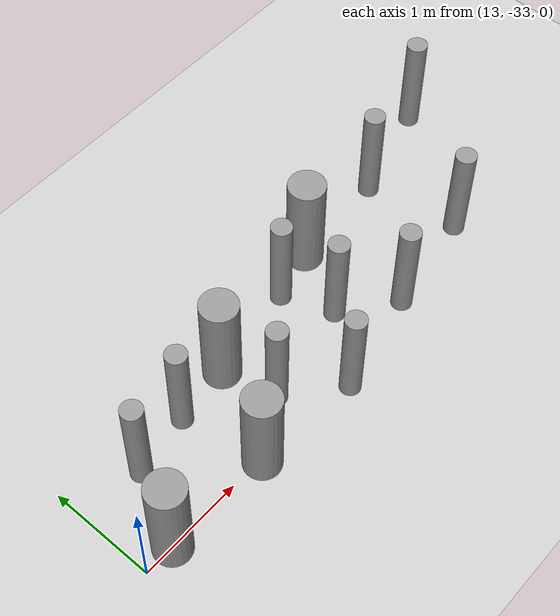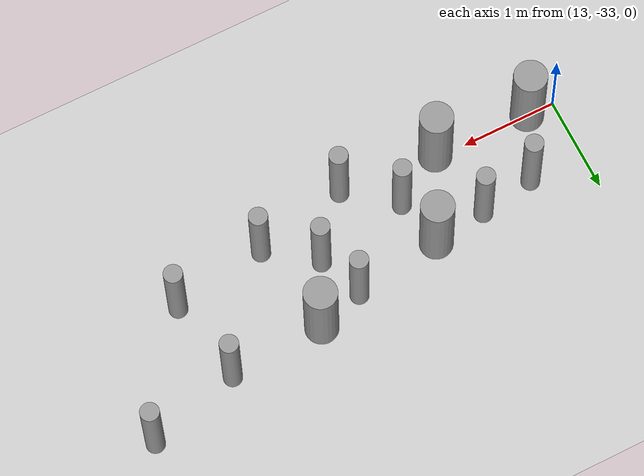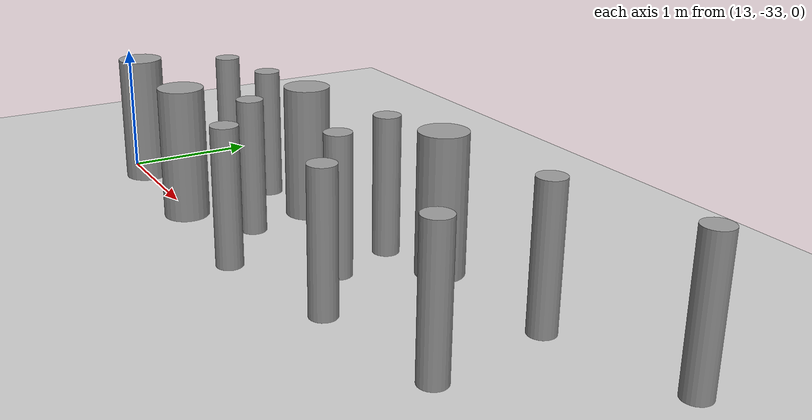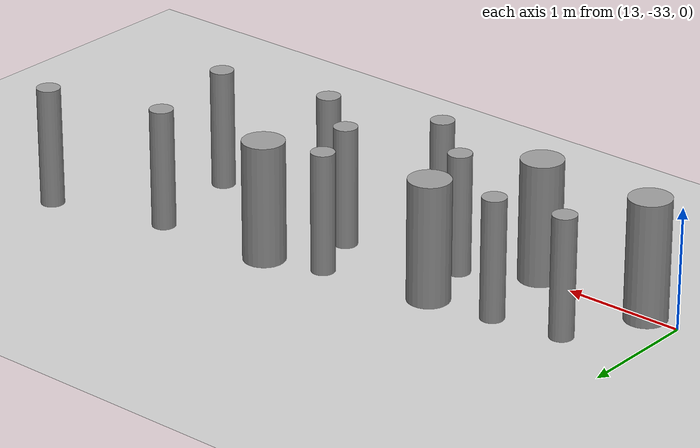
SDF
<sdf version="1.6">
 <world name="default">
  <model name="ground_plane">
   <static>1</static>
   <link name="link">
    <collision name="collision">
     <geometry><plane><normal>0 0 1</normal><size>100 100</size></plane></geometry>
     <surface><friction><ode><mu>100</mu><mu2>50</mu2></ode></friction></surface>
    </collision>
    <visual name="visual">
     <cast_shadows>0</cast_shadows>
     <geometry><plane><normal>0 0 1</normal><size>100 100</size></plane></geometry>
     <material>
      <script><uri>file://media/materials/scripts/gazebo.material</uri><name>Gazebo/Grey</name></script>
     </material>
    </visual>
   </link>
  </model>
  <model name="cyl_wall_clone_clone_1_clone_1_clone_clone_1_clone_0_clone_0">
   <link name="link_0">
    <pose>-2.73893 -0.366465 0 0 -0 0</pose>
    <inertial>
     <mass>0.0374993</mass>
     <inertia>
      <ixx>0.00321281</ixx>
      <ixy>0</ixy>
      <ixz>0</ixz>
      <iyy>0.00321281</iyy>
      <iyz>0</iyz>
      <izz>0.000175774</izz>
     </inertia>
    </inertial>
    <visual name="visual">
     <geometry><cylinder><radius>0.0968661</radius><length>1</length></cylinder></geometry>
     <material>
      <lighting>1</lighting>
      <script><uri>file://media/materials/scripts/gazebo.material</uri><name>Gazebo/Grey</name></script>
      <ambient>0.3 0.3 0.3 1</ambient>
      <diffuse>0.7 0.7 0.7 1</diffuse>
      <specular>0.01 0.01 0.01 1</specular>
      <emissive>0 0 0 1</emissive>
     </material>
    </visual>
    <collision name="collision">
     <geometry><cylinder><radius>0.096866</radius><length>1</length></cylinder></geometry>
     <surface>
      <friction>
       <ode><mu>1</mu><mu2>1</mu2><fdir1>0 0 0</fdir1><slip1>0</slip1><slip2>0</slip2></ode>
       <torsional>
        <coefficient>1</coefficient>
        <patch_radius>0</patch_radius>
        <surface_radius>0</surface_radius>
        <use_patch_radius>1</use_patch_radius>
        <ode><slip>0</slip></ode>
       </torsional>
      </friction>
      <bounce><restitution_coefficient>0</restitution_coefficient><threshold>1e+06</threshold></bounce>
      <contact>
       <collide_without_contact>0</collide_without_contact>
       <collide_without_contact_bitmask>1</collide_without_contact_bitmask>
       <collide_bitmask>1</collide_bitmask>
       <ode>
        <soft_cfm>0</soft_cfm>
        <soft_erp>0.2</soft_erp>
        <kp>1e+13</kp>
        <kd>1</kd>
        <max_vel>0.01</max_vel>
        <min_depth>0</min_depth>
       </ode>
       <bullet>
        <split_impulse>1</split_impulse>
        <split_impulse_penetration_threshold>-0.01</split_impulse_penetration_threshold>
        <soft_cfm>0</soft_cfm>
        <soft_erp>0.2</soft_erp>
        <kp>1e+13</kp>
        <kd>1</kd>
       </bullet>
      </contact>
     </surface>
    </collision>
   </link>
   <link name="link_0_clone">
    <pose>-1.73893 0.61877 0 0 -0 0</pose>
    <inertial>
     <mass>0.0374993</mass>
     <inertia>
      <ixx>0.00321281</ixx>
      <ixy>0</ixy>
      <ixz>0</ixz>
      <iyy>0.00321281</iyy>
      <iyz>0</iyz>
      <izz>0.000175774</izz>
     </inertia>
    </inertial>
    <visual name="visual">
     <geometry><cylinder><radius>0.0968661</radius><length>1</length></cylinder></geometry>
     <material>
      <lighting>1</lighting>
      <script><uri>file://media/materials/scripts/gazebo.material</uri><name>Gazebo/Grey</name></script>
      <ambient>0.3 0.3 0.3 1</ambient>
      <diffuse>0.7 0.7 0.7 1</diffuse>
      <specular>0.01 0.01 0.01 1</specular>
      <emissive>0 0 0 1</emissive>
      <shader type="pixel"/>
     </material>
    </visual>
    <collision name="collision">
     <geometry><cylinder><radius>0.096866</radius><length>1</length></cylinder></geometry>
     <surface>
      <friction>
       <ode><mu>1</mu><mu2>1</mu2><fdir1>0 0 0</fdir1><slip1>0</slip1><slip2>0</slip2></ode>
       <torsional>
        <coefficient>1</coefficient>
        <patch_radius>0</patch_radius>
        <surface_radius>0</surface_radius>
        <use_patch_radius>1</use_patch_radius>
        <ode><slip>0</slip></ode>
       </torsional>
      </friction>
      <bounce><restitution_coefficient>0</restitution_coefficient><threshold>1e+06</threshold></bounce>
      <contact>
       <collide_without_contact>0</collide_without_contact>
       <collide_without_contact_bitmask>1</collide_without_contact_bitmask>
       <collide_bitmask>1</collide_bitmask>
       <ode>
        <soft_cfm>0</soft_cfm>
        <soft_erp>0.2</soft_erp>
        <kp>1e+13</kp>
        <kd>1</kd>
        <max_vel>0.01</max_vel>
        <min_depth>0</min_depth>
       </ode>
       <bullet>
        <split_impulse>1</split_impulse>
        <split_impulse_penetration_threshold>-0.01</split_impulse_penetration_threshold>
        <soft_cfm>0</soft_cfm>
        <soft_erp>0.2</soft_erp>
        <kp>1e+13</kp>
        <kd>1</kd>
       </bullet>
      </contact>
     </surface>
    </collision>
   </link>
   <link name="link_0_clone_clone">
    <pose>-0.327073 0.143919 0 0 -0 0</pose>
    <inertial>
     <mass>0.0374993</mass>
     <inertia>
      <ixx>0.00321281</ixx>
      <ixy>0</ixy>
      <ixz>0</ixz>
      <iyy>0.00321281</iyy>
      <iyz>0</iyz>
      <izz>0.000175774</izz>
     </inertia>
    </inertial>
    <visual name="visual">
     <geometry><cylinder><radius>0.0968661</radius><length>1</length></cylinder></geometry>
     <material>
      <lighting>1</lighting>
      <script><uri>file://media/materials/scripts/gazebo.material</uri><name>Gazebo/Grey</name></script>
      <ambient>0.3 0.3 0.3 1</ambient>
      <diffuse>0.7 0.7 0.7 1</diffuse>
      <specular>0.01 0.01 0.01 1</specular>
      <emissive>0 0 0 1</emissive>
      <shader type="pixel"/>
     </material>
    </visual>
    <collision name="collision">
     <geometry><cylinder><radius>0.096866</radius><length>1</length></cylinder></geometry>
     <surface>
      <friction>
       <ode><mu>1</mu><mu2>1</mu2><fdir1>0 0 0</fdir1><slip1>0</slip1><slip2>0</slip2></ode>
       <torsional>
        <coefficient>1</coefficient>
        <patch_radius>0</patch_radius>
        <surface_radius>0</surface_radius>
        <use_patch_radius>1</use_patch_radius>
        <ode><slip>0</slip></ode>
       </torsional>
      </friction>
      <bounce><restitution_coefficient>0</restitution_coefficient><threshold>1e+06</threshold></bounce>
      <contact>
       <collide_without_contact>0</collide_without_contact>
       <collide_without_contact_bitmask>1</collide_without_contact_bitmask>
       <collide_bitmask>1</collide_bitmask>
       <ode>
        <soft_cfm>0</soft_cfm>
        <soft_erp>0.2</soft_erp>
        <kp>1e+13</kp>
        <kd>1</kd>
        <max_vel>0.01</max_vel>
        <min_depth>0</min_depth>
       </ode>
       <bullet>
        <split_impulse>1</split_impulse>
        <split_impulse_penetration_threshold>-0.01</split_impulse_penetration_threshold>
        <soft_cfm>0</soft_cfm>
        <soft_erp>0.2</soft_erp>
        <kp>1e+13</kp>
        <kd>1</kd>
       </bullet>
      </contact>
     </surface>
    </collision>
   </link>
   <link name="link_0_clone_clone_0">
    <pose>1.26107 -0.419359 0 0 -0 0</pose>
    <inertial>
     <mass>0.0374993</mass>
     <inertia>
      <ixx>0.00321281</ixx>
      <ixy>0</ixy>
      <ixz>0</ixz>
      <iyy>0.00321281</iyy>
      <iyz>0</iyz>
      <izz>0.000175774</izz>
     </inertia>
    </inertial>
    <visual name="visual">
     <geometry><cylinder><radius>0.0968661</radius><length>1</length></cylinder></geometry>
     <material>
      <lighting>1</lighting>
      <script><uri>file://media/materials/scripts/gazebo.material</uri><name>Gazebo/Grey</name></script>
      <ambient>0.3 0.3 0.3 1</ambient>
      <diffuse>0.7 0.7 0.7 1</diffuse>
      <specular>0.01 0.01 0.01 1</specular>
      <emissive>0 0 0 1</emissive>
      <shader type="pixel"/>
     </material>
    </visual>
    <collision name="collision">
     <geometry><cylinder><radius>0.096866</radius><length>1</length></cylinder></geometry>
     <surface>
      <friction>
       <ode><mu>1</mu><mu2>1</mu2><fdir1>0 0 0</fdir1><slip1>0</slip1><slip2>0</slip2></ode>
       <torsional>
        <coefficient>1</coefficient>
        <patch_radius>0</patch_radius>
        <surface_radius>0</surface_radius>
        <use_patch_radius>1</use_patch_radius>
        <ode><slip>0</slip></ode>
       </torsional>
      </friction>
      <bounce><restitution_coefficient>0</restitution_coefficient><threshold>1e+06</threshold></bounce>
      <contact>
       <collide_without_contact>0</collide_without_contact>
       <collide_without_contact_bitmask>1</collide_without_contact_bitmask>
       <collide_bitmask>1</collide_bitmask>
       <ode>
        <soft_cfm>0</soft_cfm>
        <soft_erp>0.2</soft_erp>
        <kp>1e+13</kp>
        <kd>1</kd>
        <max_vel>0.01</max_vel>
        <min_depth>0</min_depth>
       </ode>
       <bullet>
        <split_impulse>1</split_impulse>
        <split_impulse_penetration_threshold>-0.01</split_impulse_penetration_threshold>
        <soft_cfm>0</soft_cfm>
        <soft_erp>0.2</soft_erp>
        <kp>1e+13</kp>
        <kd>1</kd>
       </bullet>
      </contact>
     </surface>
    </collision>
   </link>
   <link name="link_0_clone_clone_1">
    <pose>-1.73893 -0.277168 0 0 -0 0</pose>
    <inertial>
     <mass>0.0374993</mass>
     <inertia>
      <ixx>0.00321281</ixx>
      <ixy>0</ixy>
      <ixz>0</ixz>
      <iyy>0.00321281</iyy>
      <iyz>0</iyz>
      <izz>0.000175774</izz>
     </inertia>
    </inertial>
    <visual name="visual">
     <geometry><cylinder><radius>0.0968661</radius><length>1</length></cylinder></geometry>
     <material>
      <lighting>1</lighting>
      <script><uri>file://media/materials/scripts/gazebo.material</uri><name>Gazebo/Grey</name></script>
      <ambient>0.3 0.3 0.3 1</ambient>
      <diffuse>0.7 0.7 0.7 1</diffuse>
      <specular>0.01 0.01 0.01 1</specular>
      <emissive>0 0 0 1</emissive>
      <shader type="pixel"/>
     </material>
    </visual>
    <collision name="collision">
     <geometry><cylinder><radius>0.096866</radius><length>1</length></cylinder></geometry>
     <surface>
      <friction>
       <ode><mu>1</mu><mu2>1</mu2><fdir1>0 0 0</fdir1><slip1>0</slip1><slip2>0</slip2></ode>
       <torsional>
        <coefficient>1</coefficient>
        <patch_radius>0</patch_radius>
        <surface_radius>0</surface_radius>
        <use_patch_radius>1</use_patch_radius>
        <ode><slip>0</slip></ode>
       </torsional>
      </friction>
      <bounce><restitution_coefficient>0</restitution_coefficient><threshold>1e+06</threshold></bounce>
      <contact>
       <collide_without_contact>0</collide_without_contact>
       <collide_without_contact_bitmask>1</collide_without_contact_bitmask>
       <collide_bitmask>1</collide_bitmask>
       <ode>
        <soft_cfm>0</soft_cfm>
        <soft_erp>0.2</soft_erp>
        <kp>1e+13</kp>
        <kd>1</kd>
        <max_vel>0.01</max_vel>
        <min_depth>0</min_depth>
       </ode>
       <bullet>
        <split_impulse>1</split_impulse>
        <split_impulse_penetration_threshold>-0.01</split_impulse_penetration_threshold>
        <soft_cfm>0</soft_cfm>
        <soft_erp>0.2</soft_erp>
        <kp>1e+13</kp>
        <kd>1</kd>
       </bullet>
      </contact>
     </surface>
    </collision>
   </link>
   <link name="link_0_clone_clone_2">
    <pose>-0.738934 0.593961 0 0 -0 0</pose>
    <inertial>
     <mass>0.0374993</mass>
     <inertia>
      <ixx>0.00321281</ixx>
      <ixy>0</ixy>
      <ixz>0</ixz>
      <iyy>0.00321281</iyy>
      <iyz>0</iyz>
      <izz>0.000175774</izz>
     </inertia>
    </inertial>
    <visual name="visual">
     <geometry><cylinder><radius>0.0968661</radius><length>1</length></cylinder></geometry>
     <material>
      <lighting>1</lighting>
      <script><uri>file://media/materials/scripts/gazebo.material</uri><name>Gazebo/Grey</name></script>
      <ambient>0.3 0.3 0.3 1</ambient>
      <diffuse>0.7 0.7 0.7 1</diffuse>
      <specular>0.01 0.01 0.01 1</specular>
      <emissive>0 0 0 1</emissive>
      <shader type="pixel"/>
     </material>
    </visual>
    <collision name="collision">
     <geometry><cylinder><radius>0.096866</radius><length>1</length></cylinder></geometry>
     <surface>
      <friction>
       <ode><mu>1</mu><mu2>1</mu2><fdir1>0 0 0</fdir1><slip1>0</slip1><slip2>0</slip2></ode>
       <torsional>
        <coefficient>1</coefficient>
        <patch_radius>0</patch_radius>
        <surface_radius>0</surface_radius>
        <use_patch_radius>1</use_patch_radius>
        <ode><slip>0</slip></ode>
       </torsional>
      </friction>
      <bounce><restitution_coefficient>0</restitution_coefficient><threshold>1e+06</threshold></bounce>
      <contact>
       <collide_without_contact>0</collide_without_contact>
       <collide_without_contact_bitmask>1</collide_without_contact_bitmask>
       <collide_bitmask>1</collide_bitmask>
       <ode>
        <soft_cfm>0</soft_cfm>
        <soft_erp>0.2</soft_erp>
        <kp>1e+13</kp>
        <kd>1</kd>
        <max_vel>0.01</max_vel>
        <min_depth>0</min_depth>
       </ode>
       <bullet>
        <split_impulse>1</split_impulse>
        <split_impulse_penetration_threshold>-0.01</split_impulse_penetration_threshold>
        <soft_cfm>0</soft_cfm>
        <soft_erp>0.2</soft_erp>
        <kp>1e+13</kp>
        <kd>1</kd>
       </bullet>
      </contact>
     </surface>
    </collision>
   </link>
   <link name="link_0_clone_clone_3">
    <pose>0.261066 0.624849 0 0 -0 0</pose>
    <inertial>
     <mass>0.0374993</mass>
     <inertia>
      <ixx>0.00321281</ixx>
      <ixy>0</ixy>
      <ixz>0</ixz>
      <iyy>0.00321281</iyy>
      <iyz>0</iyz>
      <izz>0.000175774</izz>
     </inertia>
    </inertial>
    <visual name="visual">
     <geometry><cylinder><radius>0.0968661</radius><length>1</length></cylinder></geometry>
     <material>
      <lighting>1</lighting>
      <script><uri>file://media/materials/scripts/gazebo.material</uri><name>Gazebo/Grey</name></script>
      <ambient>0.3 0.3 0.3 1</ambient>
      <diffuse>0.7 0.7 0.7 1</diffuse>
      <specular>0.01 0.01 0.01 1</specular>
      <emissive>0 0 0 1</emissive>
      <shader type="pixel"/>
     </material>
    </visual>
    <collision name="collision">
     <geometry><cylinder><radius>0.096866</radius><length>1</length></cylinder></geometry>
     <surface>
      <friction>
       <ode><mu>1</mu><mu2>1</mu2><fdir1>0 0 0</fdir1><slip1>0</slip1><slip2>0</slip2></ode>
       <torsional>
        <coefficient>1</coefficient>
        <patch_radius>0</patch_radius>
        <surface_radius>0</surface_radius>
        <use_patch_radius>1</use_patch_radius>
        <ode><slip>0</slip></ode>
       </torsional>
      </friction>
      <bounce><restitution_coefficient>0</restitution_coefficient><threshold>1e+06</threshold></bounce>
      <contact>
       <collide_without_contact>0</collide_without_contact>
       <collide_without_contact_bitmask>1</collide_without_contact_bitmask>
       <collide_bitmask>1</collide_bitmask>
       <ode>
        <soft_cfm>0</soft_cfm>
        <soft_erp>0.2</soft_erp>
        <kp>1e+13</kp>
        <kd>1</kd>
        <max_vel>0.01</max_vel>
        <min_depth>0</min_depth>
       </ode>
       <bullet>
        <split_impulse>1</split_impulse>
        <split_impulse_penetration_threshold>-0.01</split_impulse_penetration_threshold>
        <soft_cfm>0</soft_cfm>
        <soft_erp>0.2</soft_erp>
        <kp>1e+13</kp>
        <kd>1</kd>
       </bullet>
      </contact>
     </surface>
    </collision>
   </link>
   <link name="link_0_clone_clone_4">
    <pose>-0.239049 -0.353105 0 0 -0 0</pose>
    <inertial>
     <mass>0.0374993</mass>
     <inertia>
      <ixx>0.00321281</ixx>
      <ixy>0</ixy>
      <ixz>0</ixz>
      <iyy>0.00321281</iyy>
      <iyz>0</iyz>
      <izz>0.000175774</izz>
     </inertia>
    </inertial>
    <visual name="visual">
     <geometry><cylinder><radius>0.0968661</radius><length>1</length></cylinder></geometry>
     <material>
      <lighting>1</lighting>
      <script><uri>file://media/materials/scripts/gazebo.material</uri><name>Gazebo/Grey</name></script>
      <ambient>0.3 0.3 0.3 1</ambient>
      <diffuse>0.7 0.7 0.7 1</diffuse>
      <specular>0.01 0.01 0.01 1</specular>
      <emissive>0 0 0 1</emissive>
      <shader type="pixel"/>
     </material>
    </visual>
    <collision name="collision">
     <geometry><cylinder><radius>0.096866</radius><length>1</length></cylinder></geometry>
     <surface>
      <friction>
       <ode><mu>1</mu><mu2>1</mu2><fdir1>0 0 0</fdir1><slip1>0</slip1><slip2>0</slip2></ode>
       <torsional>
        <coefficient>1</coefficient>
        <patch_radius>0</patch_radius>
        <surface_radius>0</surface_radius>
        <use_patch_radius>1</use_patch_radius>
        <ode><slip>0</slip></ode>
       </torsional>
      </friction>
      <bounce><restitution_coefficient>0</restitution_coefficient><threshold>1e+06</threshold></bounce>
      <contact>
       <collide_without_contact>0</collide_without_contact>
       <collide_without_contact_bitmask>1</collide_without_contact_bitmask>
       <collide_bitmask>1</collide_bitmask>
       <ode>
        <soft_cfm>0</soft_cfm>
        <soft_erp>0.2</soft_erp>
        <kp>1e+13</kp>
        <kd>1</kd>
        <max_vel>0.01</max_vel>
        <min_depth>0</min_depth>
       </ode>
       <bullet>
        <split_impulse>1</split_impulse>
        <split_impulse_penetration_threshold>-0.01</split_impulse_penetration_threshold>
        <soft_cfm>0</soft_cfm>
        <soft_erp>0.2</soft_erp>
        <kp>1e+13</kp>
        <kd>1</kd>
       </bullet>
      </contact>
     </surface>
    </collision>
   </link>
   <link name="link_0_clone_clone_5">
    <pose>0.672792 0.143919 0 0 -0 0</pose>
    <inertial>
     <mass>0.0374993</mass>
     <inertia>
      <ixx>0.00321281</ixx>
      <ixy>0</ixy>
      <ixz>0</ixz>
      <iyy>0.00321281</iyy>
      <iyz>0</iyz>
      <izz>0.000175774</izz>
     </inertia>
    </inertial>
    <visual name="visual">
     <geometry><cylinder><radius>0.0968661</radius><length>1</length></cylinder></geometry>
     <material>
      <lighting>1</lighting>
      <script><uri>file://media/materials/scripts/gazebo.material</uri><name>Gazebo/Grey</name></script>
      <ambient>0.3 0.3 0.3 1</ambient>
      <diffuse>0.7 0.7 0.7 1</diffuse>
      <specular>0.01 0.01 0.01 1</specular>
      <emissive>0 0 0 1</emissive>
      <shader type="pixel"/>
     </material>
    </visual>
    <collision name="collision">
     <geometry><cylinder><radius>0.096866</radius><length>1</length></cylinder></geometry>
     <surface>
      <friction>
       <ode><mu>1</mu><mu2>1</mu2><fdir1>0 0 0</fdir1><slip1>0</slip1><slip2>0</slip2></ode>
       <torsional>
        <coefficient>1</coefficient>
        <patch_radius>0</patch_radius>
        <surface_radius>0</surface_radius>
        <use_patch_radius>1</use_patch_radius>
        <ode><slip>0</slip></ode>
       </torsional>
      </friction>
      <bounce><restitution_coefficient>0</restitution_coefficient><threshold>1e+06</threshold></bounce>
      <contact>
       <collide_without_contact>0</collide_without_contact>
       <collide_without_contact_bitmask>1</collide_without_contact_bitmask>
       <collide_bitmask>1</collide_bitmask>
       <ode>
        <soft_cfm>0</soft_cfm>
        <soft_erp>0.2</soft_erp>
        <kp>1e+13</kp>
        <kd>1</kd>
        <max_vel>0.01</max_vel>
        <min_depth>0</min_depth>
       </ode>
       <bullet>
        <split_impulse>1</split_impulse>
        <split_impulse_penetration_threshold>-0.01</split_impulse_penetration_threshold>
        <soft_cfm>0</soft_cfm>
        <soft_erp>0.2</soft_erp>
        <kp>1e+13</kp>
        <kd>1</kd>
       </bullet>
      </contact>
     </surface>
    </collision>
   </link>
   <link name="link_0_clone_clone_6">
    <pose>1.84596 -0.433423 0 0 -0 0</pose>
    <inertial>
     <mass>0.0374993</mass>
     <inertia>
      <ixx>0.00321281</ixx>
      <ixy>0</ixy>
      <ixz>0</ixz>
      <iyy>0.00321281</iyy>
      <iyz>0</iyz>
      <izz>0.000175774</izz>
     </inertia>
    </inertial>
    <visual name="visual">
     <geometry><cylinder><radius>0.0968661</radius><length>1</length></cylinder></geometry>
     <material>
      <lighting>1</lighting>
      <script><uri>file://media/materials/scripts/gazebo.material</uri><name>Gazebo/Grey</name></script>
      <ambient>0.3 0.3 0.3 1</ambient>
      <diffuse>0.7 0.7 0.7 1</diffuse>
      <specular>0.01 0.01 0.01 1</specular>
      <emissive>0 0 0 1</emissive>
      <shader type="pixel"/>
     </material>
    </visual>
    <collision name="collision">
     <geometry><cylinder><radius>0.096866</radius><length>1</length></cylinder></geometry>
     <surface>
      <friction>
       <ode><mu>1</mu><mu2>1</mu2><fdir1>0 0 0</fdir1><slip1>0</slip1><slip2>0</slip2></ode>
       <torsional>
        <coefficient>1</coefficient>
        <patch_radius>0</patch_radius>
        <surface_radius>0</surface_radius>
        <use_patch_radius>1</use_patch_radius>
        <ode><slip>0</slip></ode>
       </torsional>
      </friction>
      <bounce><restitution_coefficient>0</restitution_coefficient><threshold>1e+06</threshold></bounce>
      <contact>
       <collide_without_contact>0</collide_without_contact>
       <collide_without_contact_bitmask>1</collide_without_contact_bitmask>
       <collide_bitmask>1</collide_bitmask>
       <ode>
        <soft_cfm>0</soft_cfm>
        <soft_erp>0.2</soft_erp>
        <kp>1e+13</kp>
        <kd>1</kd>
        <max_vel>0.01</max_vel>
        <min_depth>0</min_depth>
       </ode>
       <bullet>
        <split_impulse>1</split_impulse>
        <split_impulse_penetration_threshold>-0.01</split_impulse_penetration_threshold>
        <soft_cfm>0</soft_cfm>
        <soft_erp>0.2</soft_erp>
        <kp>1e+13</kp>
        <kd>1</kd>
       </bullet>
      </contact>
     </surface>
    </collision>
   </link>
   <link name="link_1">
    <pose>-0.738934 -0.397931 0 0 -0 0</pose>
    <inertial>
     <mass>0.117398</mass>
     <inertia>
      <ixx>0.0106445</ixx>
      <ixy>0</ixy>
      <ixz>0</ixz>
      <iyy>0.0106445</iyy>
      <iyz>0</iyz>
      <izz>0.00172278</izz>
     </inertia>
    </inertial>
    <visual name="visual">
     <geometry><cylinder><radius>0.171317</radius><length>1</length></cylinder></geometry>
     <material>
      <lighting>1</lighting>
      <script><uri>file://media/materials/scripts/gazebo.material</uri><name>Gazebo/Grey</name></script>
      <ambient>0.3 0.3 0.3 1</ambient>
      <diffuse>0.7 0.7 0.7 1</diffuse>
      <specular>0.01 0.01 0.01 1</specular>
      <emissive>0 0 0 1</emissive>
     </material>
    </visual>
    <collision name="collision">
     <geometry><cylinder><radius>0.171317</radius><length>1</length></cylinder></geometry>
     <surface>
      <friction>
       <ode><mu>1</mu><mu2>1</mu2><fdir1>0 0 0</fdir1><slip1>0</slip1><slip2>0</slip2></ode>
       <torsional>
        <coefficient>1</coefficient>
        <patch_radius>0</patch_radius>
        <surface_radius>0</surface_radius>
        <use_patch_radius>1</use_patch_radius>
        <ode><slip>0</slip></ode>
       </torsional>
      </friction>
      <bounce><restitution_coefficient>0</restitution_coefficient><threshold>1e+06</threshold></bounce>
      <contact>
       <collide_without_contact>0</collide_without_contact>
       <collide_without_contact_bitmask>1</collide_without_contact_bitmask>
       <collide_bitmask>1</collide_bitmask>
       <ode>
        <soft_cfm>0</soft_cfm>
        <soft_erp>0.2</soft_erp>
        <kp>1e+13</kp>
        <kd>1</kd>
        <max_vel>0.01</max_vel>
        <min_depth>0</min_depth>
       </ode>
       <bullet>
        <split_impulse>1</split_impulse>
        <split_impulse_penetration_threshold>-0.01</split_impulse_penetration_threshold>
        <soft_cfm>0</soft_cfm>
        <soft_erp>0.2</soft_erp>
        <kp>1e+13</kp>
        <kd>1</kd>
       </bullet>
      </contact>
     </surface>
    </collision>
   </link>
   <link name="link_1_clone">
    <pose>0.697784 -0.380861 0 0 -0 0</pose>
    <inertial>
     <mass>0.117398</mass>
     <inertia>
      <ixx>0.0106445</ixx>
      <ixy>0</ixy>
      <ixz>0</ixz>
      <iyy>0.0106445</iyy>
      <iyz>0</iyz>
      <izz>0.00172278</izz>
     </inertia>
    </inertial>
    <visual name="visual">
     <geometry><cylinder><radius>0.171317</radius><length>1</length></cylinder></geometry>
     <material>
      <lighting>1</lighting>
      <script><uri>file://media/materials/scripts/gazebo.material</uri><name>Gazebo/Grey</name></script>
      <ambient>0.3 0.3 0.3 1</ambient>
      <diffuse>0.7 0.7 0.7 1</diffuse>
      <specular>0.01 0.01 0.01 1</specular>
      <emissive>0 0 0 1</emissive>
      <shader type="pixel"/>
     </material>
    </visual>
    <collision name="collision">
     <geometry><cylinder><radius>0.171317</radius><length>1</length></cylinder></geometry>
     <surface>
      <friction>
       <ode><mu>1</mu><mu2>1</mu2><fdir1>0 0 0</fdir1><slip1>0</slip1><slip2>0</slip2></ode>
       <torsional>
        <coefficient>1</coefficient>
        <patch_radius>0</patch_radius>
        <surface_radius>0</surface_radius>
        <use_patch_radius>1</use_patch_radius>
        <ode><slip>0</slip></ode>
       </torsional>
      </friction>
      <bounce><restitution_coefficient>0</restitution_coefficient><threshold>1e+06</threshold></bounce>
      <contact>
       <collide_without_contact>0</collide_without_contact>
       <collide_without_contact_bitmask>1</collide_without_contact_bitmask>
       <collide_bitmask>1</collide_bitmask>
       <ode>
        <soft_cfm>0</soft_cfm>
        <soft_erp>0.2</soft_erp>
        <kp>1e+13</kp>
        <kd>1</kd>
        <max_vel>0.01</max_vel>
        <min_depth>0</min_depth>
       </ode>
       <bullet>
        <split_impulse>1</split_impulse>
        <split_impulse_penetration_threshold>-0.01</split_impulse_penetration_threshold>
        <soft_cfm>0</soft_cfm>
        <soft_erp>0.2</soft_erp>
        <kp>1e+13</kp>
        <kd>1</kd>
       </bullet>
      </contact>
     </surface>
    </collision>
   </link>
   <link name="link_1_clone_0">
    <pose>1.26107 0.358974 0 0 -0 0</pose>
    <inertial>
     <mass>0.117398</mass>
     <inertia>
      <ixx>0.0106445</ixx>
      <ixy>0</ixy>
      <ixz>0</ixz>
      <iyy>0.0106445</iyy>
      <iyz>0</iyz>
      <izz>0.00172278</izz>
     </inertia>
    </inertial>
    <visual name="visual">
     <geometry><cylinder><radius>0.171317</radius><length>1</length></cylinder></geometry>
     <material>
      <lighting>1</lighting>
      <script><uri>file://media/materials/scripts/gazebo.material</uri><name>Gazebo/Grey</name></script>
      <ambient>0.3 0.3 0.3 1</ambient>
      <diffuse>0.7 0.7 0.7 1</diffuse>
      <specular>0.01 0.01 0.01 1</specular>
      <emissive>0 0 0 1</emissive>
      <shader type="pixel"/>
     </material>
    </visual>
    <collision name="collision">
     <geometry><cylinder><radius>0.171317</radius><length>1</length></cylinder></geometry>
     <surface>
      <friction>
       <ode><mu>1</mu><mu2>1</mu2><fdir1>0 0 0</fdir1><slip1>0</slip1><slip2>0</slip2></ode>
       <torsional>
        <coefficient>1</coefficient>
        <patch_radius>0</patch_radius>
        <surface_radius>0</surface_radius>
        <use_patch_radius>1</use_patch_radius>
        <ode><slip>0</slip></ode>
       </torsional>
      </friction>
      <bounce><restitution_coefficient>0</restitution_coefficient><threshold>1e+06</threshold></bounce>
      <contact>
       <collide_without_contact>0</collide_without_contact>
       <collide_without_contact_bitmask>1</collide_without_contact_bitmask>
       <collide_bitmask>1</collide_bitmask>
       <ode>
        <soft_cfm>0</soft_cfm>
        <soft_erp>0.2</soft_erp>
        <kp>1e+13</kp>
        <kd>1</kd>
        <max_vel>0.01</max_vel>
        <min_depth>0</min_depth>
       </ode>
       <bullet>
        <split_impulse>1</split_impulse>
        <split_impulse_penetration_threshold>-0.01</split_impulse_penetration_threshold>
        <soft_cfm>0</soft_cfm>
        <soft_erp>0.2</soft_erp>
        <kp>1e+13</kp>
        <kd>1</kd>
       </bullet>
      </contact>
     </surface>
    </collision>
   </link>
   <link name="link_1_clone_1">
    <pose>2.26107 0.143919 0 0 -0 0</pose>
    <inertial>
     <mass>0.117398</mass>
     <inertia>
      <ixx>0.0106445</ixx>
      <ixy>0</ixy>
      <ixz>0</ixz>
      <iyy>0.0106445</iyy>
      <iyz>0</iyz>
      <izz>0.00172278</izz>
     </inertia>
    </inertial>
    <visual name="visual">
     <geometry><cylinder><radius>0.171317</radius><length>1</length></cylinder></geometry>
     <material>
      <lighting>1</lighting>
      <script><uri>file://media/materials/scripts/gazebo.material</uri><name>Gazebo/Grey</name></script>
      <ambient>0.3 0.3 0.3 1</ambient>
      <diffuse>0.7 0.7 0.7 1</diffuse>
      <specular>0.01 0.01 0.01 1</specular>
      <emissive>0 0 0 1</emissive>
      <shader type="pixel"/>
     </material>
    </visual>
    <collision name="collision">
     <geometry><cylinder><radius>0.171317</radius><length>1</length></cylinder></geometry>
     <surface>
      <friction>
       <ode><mu>1</mu><mu2>1</mu2><fdir1>0 0 0</fdir1><slip1>0</slip1><slip2>0</slip2></ode>
       <torsional>
        <coefficient>1</coefficient>
        <patch_radius>0</patch_radius>
        <surface_radius>0</surface_radius>
        <use_patch_radius>1</use_patch_radius>
        <ode><slip>0</slip></ode>
       </torsional>
      </friction>
      <bounce><restitution_coefficient>0</restitution_coefficient><threshold>1e+06</threshold></bounce>
      <contact>
       <collide_without_contact>0</collide_without_contact>
       <collide_without_contact_bitmask>1</collide_without_contact_bitmask>
       <collide_bitmask>1</collide_bitmask>
       <ode>
        <soft_cfm>0</soft_cfm>
        <soft_erp>0.2</soft_erp>
        <kp>1e+13</kp>
        <kd>1</kd>
        <max_vel>0.01</max_vel>
        <min_depth>0</min_depth>
       </ode>
       <bullet>
        <split_impulse>1</split_impulse>
        <split_impulse_penetration_threshold>-0.01</split_impulse_penetration_threshold>
        <soft_cfm>0</soft_cfm>
        <soft_erp>0.2</soft_erp>
        <kp>1e+13</kp>
        <kd>1</kd>
       </bullet>
      </contact>
     </surface>
    </collision>
   </link>
   <static>1</static>
   <pose>15.4895 -32.4476 0.5 0 0 -2.95907</pose>
  </model>
 </world>
</sdf>
